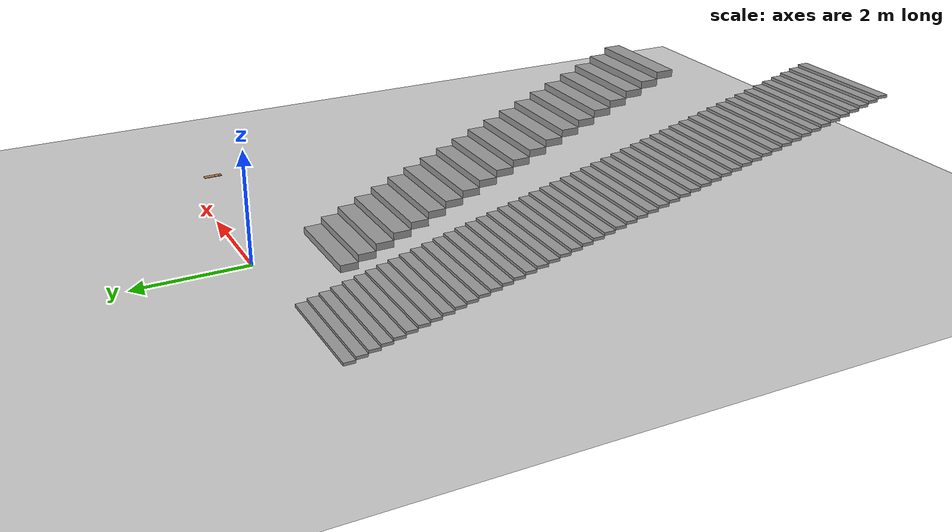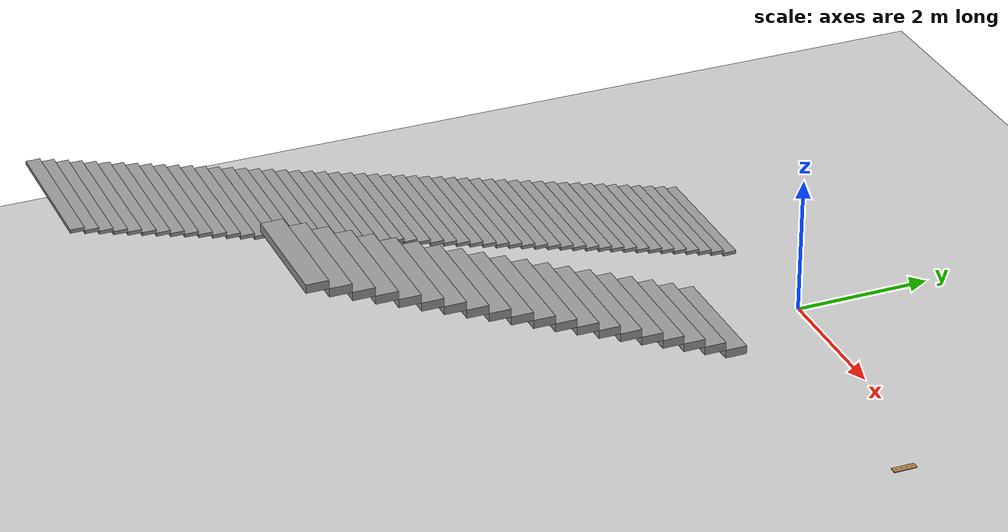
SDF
<sdf version="1.6">
 <world name="default">
  <model name="ground_plane">
   <static>1</static>
   <link name="link">
    <collision name="collision">
     <geometry><plane><normal>0 0 1</normal><size>100 100</size></plane></geometry>
     <surface><friction><ode><mu>100</mu><mu2>50</mu2></ode></friction></surface>
    </collision>
    <visual name="visual">
     <cast_shadows>0</cast_shadows>
     <geometry><plane><normal>0 0 1</normal><size>100 100</size></plane></geometry>
     <material>
      <script><uri>file://media/materials/scripts/gazebo.material</uri><name>Gazebo/Grey</name></script>
     </material>
    </visual>
   </link>
  </model>
  <model name="stair_short">
   <pose>-2.72 -4.97 0 0 -0 0</pose>
   <link name="Stairs_1">
    <visual name="Stairs_1_Visual_0">
     <pose>0 4.7383 0.025 0 -0 0</pose>
     <geometry><box><size>2.02 0.1934 0.05</size></box></geometry>
     <material>
      <script><uri>file://media/materials/scripts/gazebo.material</uri><name>Gazebo/Grey</name></script>
      <ambient>1 1 1 1</ambient>
     </material>
     <meta><layer>0</layer></meta>
    </visual>
    <collision name="Stairs_1_Collision_0">
     <geometry><box><size>2.02 0.1934 0.05</size></box></geometry>
     <pose>0 4.7383 0.025 0 -0 0</pose>
    </collision>
    <visual name="Stairs_1_Visual_1">
     <pose>0 4.5449 0.075 0 -0 0</pose>
     <geometry><box><size>2.02 0.1934 0.05</size></box></geometry>
     <material>
      <script><uri>file://media/materials/scripts/gazebo.material</uri><name>Gazebo/Grey</name></script>
      <ambient>1 1 1 1</ambient>
     </material>
     <meta><layer>0</layer></meta>
    </visual>
    <collision name="Stairs_1_Collision_1">
     <geometry><box><size>2.02 0.1934 0.05</size></box></geometry>
     <pose>0 4.5449 0.075 0 -0 0</pose>
    </collision>
    <visual name="Stairs_1_Visual_2">
     <pose>0 4.3515 0.125 0 -0 0</pose>
     <geometry><box><size>2.02 0.1934 0.05</size></box></geometry>
     <material>
      <script><uri>file://media/materials/scripts/gazebo.material</uri><name>Gazebo/Grey</name></script>
      <ambient>1 1 1 1</ambient>
     </material>
     <meta><layer>0</layer></meta>
    </visual>
    <collision name="Stairs_1_Collision_2">
     <geometry><box><size>2.02 0.1934 0.05</size></box></geometry>
     <pose>0 4.3515 0.125 0 -0 0</pose>
    </collision>
    <visual name="Stairs_1_Visual_3">
     <pose>0 4.1581 0.175 0 -0 0</pose>
     <geometry><box><size>2.02 0.1934 0.05</size></box></geometry>
     <material>
      <script><uri>file://media/materials/scripts/gazebo.material</uri><name>Gazebo/Grey</name></script>
      <ambient>1 1 1 1</ambient>
     </material>
     <meta><layer>0</layer></meta>
    </visual>
    <collision name="Stairs_1_Collision_3">
     <geometry><box><size>2.02 0.1934 0.05</size></box></geometry>
     <pose>0 4.1581 0.175 0 -0 0</pose>
    </collision>
    <visual name="Stairs_1_Visual_4">
     <pose>0 3.9647 0.225 0 -0 0</pose>
     <geometry><box><size>2.02 0.1934 0.05</size></box></geometry>
     <material>
      <script><uri>file://media/materials/scripts/gazebo.material</uri><name>Gazebo/Grey</name></script>
      <ambient>1 1 1 1</ambient>
     </material>
     <meta><layer>0</layer></meta>
    </visual>
    <collision name="Stairs_1_Collision_4">
     <geometry><box><size>2.02 0.1934 0.05</size></box></geometry>
     <pose>0 3.9647 0.225 0 -0 0</pose>
    </collision>
    <visual name="Stairs_1_Visual_5">
     <pose>0 3.7713 0.275 0 -0 0</pose>
     <geometry><box><size>2.02 0.1934 0.05</size></box></geometry>
     <material>
      <script><uri>file://media/materials/scripts/gazebo.material</uri><name>Gazebo/Grey</name></script>
      <ambient>1 1 1 1</ambient>
     </material>
     <meta><layer>0</layer></meta>
    </visual>
    <collision name="Stairs_1_Collision_5">
     <geometry><box><size>2.02 0.1934 0.05</size></box></geometry>
     <pose>0 3.7713 0.275 0 -0 0</pose>
    </collision>
    <visual name="Stairs_1_Visual_6">
     <pose>0 3.5779 0.325 0 -0 0</pose>
     <geometry><box><size>2.02 0.1934 0.05</size></box></geometry>
     <material>
      <script><uri>file://media/materials/scripts/gazebo.material</uri><name>Gazebo/Grey</name></script>
      <ambient>1 1 1 1</ambient>
     </material>
     <meta><layer>0</layer></meta>
    </visual>
    <collision name="Stairs_1_Collision_6">
     <geometry><box><size>2.02 0.1934 0.05</size></box></geometry>
     <pose>0 3.5779 0.325 0 -0 0</pose>
    </collision>
    <visual name="Stairs_1_Visual_7">
     <pose>0 3.3845 0.375 0 -0 0</pose>
     <geometry><box><size>2.02 0.1934 0.05</size></box></geometry>
     <material>
      <script><uri>file://media/materials/scripts/gazebo.material</uri><name>Gazebo/Grey</name></script>
      <ambient>1 1 1 1</ambient>
     </material>
     <meta><layer>0</layer></meta>
    </visual>
    <collision name="Stairs_1_Collision_7">
     <geometry><box><size>2.02 0.1934 0.05</size></box></geometry>
     <pose>0 3.3845 0.375 0 -0 0</pose>
    </collision>
    <visual name="Stairs_1_Visual_8">
     <pose>0 3.1911 0.425 0 -0 0</pose>
     <geometry><box><size>2.02 0.1934 0.05</size></box></geometry>
     <material>
      <script><uri>file://media/materials/scripts/gazebo.material</uri><name>Gazebo/Grey</name></script>
      <ambient>1 1 1 1</ambient>
     </material>
     <meta><layer>0</layer></meta>
    </visual>
    <collision name="Stairs_1_Collision_8">
     <geometry><box><size>2.02 0.1934 0.05</size></box></geometry>
     <pose>0 3.1911 0.425 0 -0 0</pose>
    </collision>
    <visual name="Stairs_1_Visual_9">
     <pose>0 2.9977 0.475 0 -0 0</pose>
     <geometry><box><size>2.02 0.1934 0.05</size></box></geometry>
     <material>
      <script><uri>file://media/materials/scripts/gazebo.material</uri><name>Gazebo/Grey</name></script>
      <ambient>1 1 1 1</ambient>
     </material>
     <meta><layer>0</layer></meta>
    </visual>
    <collision name="Stairs_1_Collision_9">
     <geometry><box><size>2.02 0.1934 0.05</size></box></geometry>
     <pose>0 2.9977 0.475 0 -0 0</pose>
    </collision>
    <visual name="Stairs_1_Visual_10">
     <pose>0 2.8043 0.525 0 -0 0</pose>
     <geometry><box><size>2.02 0.1934 0.05</size></box></geometry>
     <material>
      <script><uri>file://media/materials/scripts/gazebo.material</uri><name>Gazebo/Grey</name></script>
      <ambient>1 1 1 1</ambient>
     </material>
     <meta><layer>0</layer></meta>
    </visual>
    <collision name="Stairs_1_Collision_10">
     <geometry><box><size>2.02 0.1934 0.05</size></box></geometry>
     <pose>0 2.8043 0.525 0 -0 0</pose>
    </collision>
    <visual name="Stairs_1_Visual_11">
     <pose>0 2.6109 0.575 0 -0 0</pose>
     <geometry><box><size>2.02 0.1934 0.05</size></box></geometry>
     <material>
      <script><uri>file://media/materials/scripts/gazebo.material</uri><name>Gazebo/Grey</name></script>
      <ambient>1 1 1 1</ambient>
     </material>
     <meta><layer>0</layer></meta>
    </visual>
    <collision name="Stairs_1_Collision_11">
     <geometry><box><size>2.02 0.1934 0.05</size></box></geometry>
     <pose>0 2.6109 0.575 0 -0 0</pose>
    </collision>
    <visual name="Stairs_1_Visual_12">
     <pose>0 2.4175 0.625 0 -0 0</pose>
     <geometry><box><size>2.02 0.1934 0.05</size></box></geometry>
     <material>
      <script><uri>file://media/materials/scripts/gazebo.material</uri><name>Gazebo/Grey</name></script>
      <ambient>1 1 1 1</ambient>
     </material>
     <meta><layer>0</layer></meta>
    </visual>
    <collision name="Stairs_1_Collision_12">
     <geometry><box><size>2.02 0.1934 0.05</size></box></geometry>
     <pose>0 2.4175 0.625 0 -0 0</pose>
    </collision>
    <visual name="Stairs_1_Visual_13">
     <pose>0 2.2241 0.675 0 -0 0</pose>
     <geometry><box><size>2.02 0.1934 0.05</size></box></geometry>
     <material>
      <script><uri>file://media/materials/scripts/gazebo.material</uri><name>Gazebo/Grey</name></script>
      <ambient>1 1 1 1</ambient>
     </material>
     <meta><layer>0</layer></meta>
    </visual>
    <collision name="Stairs_1_Collision_13">
     <geometry><box><size>2.02 0.1934 0.05</size></box></geometry>
     <pose>0 2.2241 0.675 0 -0 0</pose>
    </collision>
    <visual name="Stairs_1_Visual_14">
     <pose>0 2.0307 0.725 0 -0 0</pose>
     <geometry><box><size>2.02 0.1934 0.05</size></box></geometry>
     <material>
      <script><uri>file://media/materials/scripts/gazebo.material</uri><name>Gazebo/Grey</name></script>
      <ambient>1 1 1 1</ambient>
     </material>
     <meta><layer>0</layer></meta>
    </visual>
    <collision name="Stairs_1_Collision_14">
     <geometry><box><size>2.02 0.1934 0.05</size></box></geometry>
     <pose>0 2.0307 0.725 0 -0 0</pose>
    </collision>
    <visual name="Stairs_1_Visual_15">
     <pose>0 1.8373 0.775 0 -0 0</pose>
     <geometry><box><size>2.02 0.1934 0.05</size></box></geometry>
     <material>
      <script><uri>file://media/materials/scripts/gazebo.material</uri><name>Gazebo/Grey</name></script>
      <ambient>1 1 1 1</ambient>
     </material>
     <meta><layer>0</layer></meta>
    </visual>
    <collision name="Stairs_1_Collision_15">
     <geometry><box><size>2.02 0.1934 0.05</size></box></geometry>
     <pose>0 1.8373 0.775 0 -0 0</pose>
    </collision>
    <visual name="Stairs_1_Visual_16">
     <pose>0 1.6439 0.825 0 -0 0</pose>
     <geometry><box><size>2.02 0.1934 0.05</size></box></geometry>
     <material>
      <script><uri>file://media/materials/scripts/gazebo.material</uri><name>Gazebo/Grey</name></script>
      <ambient>1 1 1 1</ambient>
     </material>
     <meta><layer>0</layer></meta>
    </visual>
    <collision name="Stairs_1_Collision_16">
     <geometry><box><size>2.02 0.1934 0.05</size></box></geometry>
     <pose>0 1.6439 0.825 0 -0 0</pose>
    </collision>
    <visual name="Stairs_1_Visual_17">
     <pose>0 1.4505 0.875 0 -0 0</pose>
     <geometry><box><size>2.02 0.1934 0.05</size></box></geometry>
     <material>
      <script><uri>file://media/materials/scripts/gazebo.material</uri><name>Gazebo/Grey</name></script>
      <ambient>1 1 1 1</ambient>
     </material>
     <meta><layer>0</layer></meta>
    </visual>
    <collision name="Stairs_1_Collision_17">
     <geometry><box><size>2.02 0.1934 0.05</size></box></geometry>
     <pose>0 1.4505 0.875 0 -0 0</pose>
    </collision>
    <visual name="Stairs_1_Visual_18">
     <pose>0 1.2571 0.925 0 -0 0</pose>
     <geometry><box><size>2.02 0.1934 0.05</size></box></geometry>
     <material>
      <script><uri>file://media/materials/scripts/gazebo.material</uri><name>Gazebo/Grey</name></script>
      <ambient>1 1 1 1</ambient>
     </material>
     <meta><layer>0</layer></meta>
    </visual>
    <collision name="Stairs_1_Collision_18">
     <geometry><box><size>2.02 0.1934 0.05</size></box></geometry>
     <pose>0 1.2571 0.925 0 -0 0</pose>
    </collision>
    <visual name="Stairs_1_Visual_19">
     <pose>0 1.0637 0.975 0 -0 0</pose>
     <geometry><box><size>2.02 0.1934 0.05</size></box></geometry>
     <material>
      <script><uri>file://media/materials/scripts/gazebo.material</uri><name>Gazebo/Grey</name></script>
      <ambient>1 1 1 1</ambient>
     </material>
     <meta><layer>0</layer></meta>
    </visual>
    <collision name="Stairs_1_Collision_19">
     <geometry><box><size>2.02 0.1934 0.05</size></box></geometry>
     <pose>0 1.0637 0.975 0 -0 0</pose>
    </collision>
    <visual name="Stairs_1_Visual_20">
     <pose>0 0.870299 1.025 0 -0 0</pose>
     <geometry><box><size>2.02 0.1934 0.05</size></box></geometry>
     <material>
      <script><uri>file://media/materials/scripts/gazebo.material</uri><name>Gazebo/Grey</name></script>
      <ambient>1 1 1 1</ambient>
     </material>
     <meta><layer>0</layer></meta>
    </visual>
    <collision name="Stairs_1_Collision_20">
     <geometry><box><size>2.02 0.1934 0.05</size></box></geometry>
     <pose>0 0.870299 1.025 0 -0 0</pose>
    </collision>
    <visual name="Stairs_1_Visual_21">
     <pose>0 0.6769 1.075 0 -0 0</pose>
     <geometry><box><size>2.02 0.1934 0.05</size></box></geometry>
     <material>
      <script><uri>file://media/materials/scripts/gazebo.material</uri><name>Gazebo/Grey</name></script>
      <ambient>1 1 1 1</ambient>
     </material>
     <meta><layer>0</layer></meta>
    </visual>
    <collision name="Stairs_1_Collision_21">
     <geometry><box><size>2.02 0.1934 0.05</size></box></geometry>
     <pose>0 0.6769 1.075 0 -0 0</pose>
    </collision>
    <visual name="Stairs_1_Visual_22">
     <pose>0 0.4835 1.125 0 -0 0</pose>
     <geometry><box><size>2.02 0.1934 0.05</size></box></geometry>
     <material>
      <script><uri>file://media/materials/scripts/gazebo.material</uri><name>Gazebo/Grey</name></script>
      <ambient>1 1 1 1</ambient>
     </material>
     <meta><layer>0</layer></meta>
    </visual>
    <collision name="Stairs_1_Collision_22">
     <geometry><box><size>2.02 0.1934 0.05</size></box></geometry>
     <pose>0 0.4835 1.125 0 -0 0</pose>
    </collision>
    <visual name="Stairs_1_Visual_23">
     <pose>0 0.2901 1.175 0 -0 0</pose>
     <geometry><box><size>2.02 0.1934 0.05</size></box></geometry>
     <material>
      <script><uri>file://media/materials/scripts/gazebo.material</uri><name>Gazebo/Grey</name></script>
      <ambient>1 1 1 1</ambient>
     </material>
     <meta><layer>0</layer></meta>
    </visual>
    <collision name="Stairs_1_Collision_23">
     <geometry><box><size>2.02 0.1934 0.05</size></box></geometry>
     <pose>0 0.2901 1.175 0 -0 0</pose>
    </collision>
    <visual name="Stairs_1_Visual_24">
     <pose>0 0.0967 1.225 0 -0 0</pose>
     <geometry><box><size>2.02 0.1934 0.05</size></box></geometry>
     <material>
      <script><uri>file://media/materials/scripts/gazebo.material</uri><name>Gazebo/Grey</name></script>
      <ambient>1 1 1 1</ambient>
     </material>
     <meta><layer>0</layer></meta>
    </visual>
    <collision name="Stairs_1_Collision_24">
     <geometry><box><size>2.02 0.1934 0.05</size></box></geometry>
     <pose>0 0.0967 1.225 0 -0 0</pose>
    </collision>
    <visual name="Stairs_1_Visual_25">
     <pose>0 -0.096701 1.275 0 -0 0</pose>
     <geometry><box><size>2.02 0.1934 0.05</size></box></geometry>
     <material>
      <script><uri>file://media/materials/scripts/gazebo.material</uri><name>Gazebo/Grey</name></script>
      <ambient>1 1 1 1</ambient>
     </material>
     <meta><layer>0</layer></meta>
    </visual>
    <collision name="Stairs_1_Collision_25">
     <geometry><box><size>2.02 0.1934 0.05</size></box></geometry>
     <pose>0 -0.096701 1.275 0 -0 0</pose>
    </collision>
    <visual name="Stairs_1_Visual_26">
     <pose>0 -0.2901 1.325 0 -0 0</pose>
     <geometry><box><size>2.02 0.1934 0.05</size></box></geometry>
     <material>
      <script><uri>file://media/materials/scripts/gazebo.material</uri><name>Gazebo/Grey</name></script>
      <ambient>1 1 1 1</ambient>
     </material>
     <meta><layer>0</layer></meta>
    </visual>
    <collision name="Stairs_1_Collision_26">
     <geometry><box><size>2.02 0.1934 0.05</size></box></geometry>
     <pose>0 -0.2901 1.325 0 -0 0</pose>
    </collision>
    <visual name="Stairs_1_Visual_27">
     <pose>0 -0.4835 1.375 0 -0 0</pose>
     <geometry><box><size>2.02 0.1934 0.05</size></box></geometry>
     <material>
      <script><uri>file://media/materials/scripts/gazebo.material</uri><name>Gazebo/Grey</name></script>
      <ambient>1 1 1 1</ambient>
     </material>
     <meta><layer>0</layer></meta>
    </visual>
    <collision name="Stairs_1_Collision_27">
     <geometry><box><size>2.02 0.1934 0.05</size></box></geometry>
     <pose>0 -0.4835 1.375 0 -0 0</pose>
    </collision>
    <visual name="Stairs_1_Visual_28">
     <pose>0 -0.6769 1.425 0 -0 0</pose>
     <geometry><box><size>2.02 0.1934 0.05</size></box></geometry>
     <material>
      <script><uri>file://media/materials/scripts/gazebo.material</uri><name>Gazebo/Grey</name></script>
      <ambient>1 1 1 1</ambient>
     </material>
     <meta><layer>0</layer></meta>
    </visual>
    <collision name="Stairs_1_Collision_28">
     <geometry><box><size>2.02 0.1934 0.05</size></box></geometry>
     <pose>0 -0.6769 1.425 0 -0 0</pose>
    </collision>
    <visual name="Stairs_1_Visual_29">
     <pose>0 -0.8703 1.475 0 -0 0</pose>
     <geometry><box><size>2.02 0.1934 0.05</size></box></geometry>
     <material>
      <script><uri>file://media/materials/scripts/gazebo.material</uri><name>Gazebo/Grey</name></script>
      <ambient>1 1 1 1</ambient>
     </material>
     <meta><layer>0</layer></meta>
    </visual>
    <collision name="Stairs_1_Collision_29">
     <geometry><box><size>2.02 0.1934 0.05</size></box></geometry>
     <pose>0 -0.8703 1.475 0 -0 0</pose>
    </collision>
    <visual name="Stairs_1_Visual_30">
     <pose>0 -1.0637 1.525 0 -0 0</pose>
     <geometry><box><size>2.02 0.1934 0.05</size></box></geometry>
     <material>
      <script><uri>file://media/materials/scripts/gazebo.material</uri><name>Gazebo/Grey</name></script>
      <ambient>1 1 1 1</ambient>
     </material>
     <meta><layer>0</layer></meta>
    </visual>
    <collision name="Stairs_1_Collision_30">
     <geometry><box><size>2.02 0.1934 0.05</size></box></geometry>
     <pose>0 -1.0637 1.525 0 -0 0</pose>
    </collision>
    <visual name="Stairs_1_Visual_31">
     <pose>0 -1.2571 1.575 0 -0 0</pose>
     <geometry><box><size>2.02 0.1934 0.05</size></box></geometry>
     <material>
      <script><uri>file://media/materials/scripts/gazebo.material</uri><name>Gazebo/Grey</name></script>
      <ambient>1 1 1 1</ambient>
     </material>
     <meta><layer>0</layer></meta>
    </visual>
    <collision name="Stairs_1_Collision_31">
     <geometry><box><size>2.02 0.1934 0.05</size></box></geometry>
     <pose>0 -1.2571 1.575 0 -0 0</pose>
    </collision>
    <visual name="Stairs_1_Visual_32">
     <pose>0 -1.4505 1.625 0 -0 0</pose>
     <geometry><box><size>2.02 0.1934 0.05</size></box></geometry>
     <material>
      <script><uri>file://media/materials/scripts/gazebo.material</uri><name>Gazebo/Grey</name></script>
      <ambient>1 1 1 1</ambient>
     </material>
     <meta><layer>0</layer></meta>
    </visual>
    <collision name="Stairs_1_Collision_32">
     <geometry><box><size>2.02 0.1934 0.05</size></box></geometry>
     <pose>0 -1.4505 1.625 0 -0 0</pose>
    </collision>
    <visual name="Stairs_1_Visual_33">
     <pose>0 -1.6439 1.675 0 -0 0</pose>
     <geometry><box><size>2.02 0.1934 0.05</size></box></geometry>
     <material>
      <script><uri>file://media/materials/scripts/gazebo.material</uri><name>Gazebo/Grey</name></script>
      <ambient>1 1 1 1</ambient>
     </material>
     <meta><layer>0</layer></meta>
    </visual>
    <collision name="Stairs_1_Collision_33">
     <geometry><box><size>2.02 0.1934 0.05</size></box></geometry>
     <pose>0 -1.6439 1.675 0 -0 0</pose>
    </collision>
    <visual name="Stairs_1_Visual_34">
     <pose>0 -1.8373 1.725 0 -0 0</pose>
     <geometry><box><size>2.02 0.1934 0.05</size></box></geometry>
     <material>
      <script><uri>file://media/materials/scripts/gazebo.material</uri><name>Gazebo/Grey</name></script>
      <ambient>1 1 1 1</ambient>
     </material>
     <meta><layer>0</layer></meta>
    </visual>
    <collision name="Stairs_1_Collision_34">
     <geometry><box><size>2.02 0.1934 0.05</size></box></geometry>
     <pose>0 -1.8373 1.725 0 -0 0</pose>
    </collision>
    <visual name="Stairs_1_Visual_35">
     <pose>0 -2.0307 1.775 0 -0 0</pose>
     <geometry><box><size>2.02 0.1934 0.05</size></box></geometry>
     <material>
      <script><uri>file://media/materials/scripts/gazebo.material</uri><name>Gazebo/Grey</name></script>
      <ambient>1 1 1 1</ambient>
     </material>
     <meta><layer>0</layer></meta>
    </visual>
    <collision name="Stairs_1_Collision_35">
     <geometry><box><size>2.02 0.1934 0.05</size></box></geometry>
     <pose>0 -2.0307 1.775 0 -0 0</pose>
    </collision>
    <visual name="Stairs_1_Visual_36">
     <pose>0 -2.2241 1.825 0 -0 0</pose>
     <geometry><box><size>2.02 0.1934 0.05</size></box></geometry>
     <material>
      <script><uri>file://media/materials/scripts/gazebo.material</uri><name>Gazebo/Grey</name></script>
      <ambient>1 1 1 1</ambient>
     </material>
     <meta><layer>0</layer></meta>
    </visual>
    <collision name="Stairs_1_Collision_36">
     <geometry><box><size>2.02 0.1934 0.05</size></box></geometry>
     <pose>0 -2.2241 1.825 0 -0 0</pose>
    </collision>
    <visual name="Stairs_1_Visual_37">
     <pose>0 -2.4175 1.875 0 -0 0</pose>
     <geometry><box><size>2.02 0.1934 0.05</size></box></geometry>
     <material>
      <script><uri>file://media/materials/scripts/gazebo.material</uri><name>Gazebo/Grey</name></script>
      <ambient>1 1 1 1</ambient>
     </material>
     <meta><layer>0</layer></meta>
    </visual>
    <collision name="Stairs_1_Collision_37">
     <geometry><box><size>2.02 0.1934 0.05</size></box></geometry>
     <pose>0 -2.4175 1.875 0 -0 0</pose>
    </collision>
    <visual name="Stairs_1_Visual_38">
     <pose>0 -2.6109 1.925 0 -0 0</pose>
     <geometry><box><size>2.02 0.1934 0.05</size></box></geometry>
     <material>
      <script><uri>file://media/materials/scripts/gazebo.material</uri><name>Gazebo/Grey</name></script>
      <ambient>1 1 1 1</ambient>
     </material>
     <meta><layer>0</layer></meta>
    </visual>
    <collision name="Stairs_1_Collision_38">
     <geometry><box><size>2.02 0.1934 0.05</size></box></geometry>
     <pose>0 -2.6109 1.925 0 -0 0</pose>
    </collision>
    <visual name="Stairs_1_Visual_39">
     <pose>0 -2.8043 1.975 0 -0 0</pose>
     <geometry><box><size>2.02 0.1934 0.05</size></box></geometry>
     <material>
      <script><uri>file://media/materials/scripts/gazebo.material</uri><name>Gazebo/Grey</name></script>
      <ambient>1 1 1 1</ambient>
     </material>
     <meta><layer>0</layer></meta>
    </visual>
    <collision name="Stairs_1_Collision_39">
     <geometry><box><size>2.02 0.1934 0.05</size></box></geometry>
     <pose>0 -2.8043 1.975 0 -0 0</pose>
    </collision>
    <visual name="Stairs_1_Visual_40">
     <pose>0 -2.9977 2.025 0 -0 0</pose>
     <geometry><box><size>2.02 0.1934 0.05</size></box></geometry>
     <material>
      <script><uri>file://media/materials/scripts/gazebo.material</uri><name>Gazebo/Grey</name></script>
      <ambient>1 1 1 1</ambient>
     </material>
     <meta><layer>0</layer></meta>
    </visual>
    <collision name="Stairs_1_Collision_40">
     <geometry><box><size>2.02 0.1934 0.05</size></box></geometry>
     <pose>0 -2.9977 2.025 0 -0 0</pose>
    </collision>
    <visual name="Stairs_1_Visual_41">
     <pose>0 -3.1911 2.075 0 -0 0</pose>
     <geometry><box><size>2.02 0.1934 0.05</size></box></geometry>
     <material>
      <script><uri>file://media/materials/scripts/gazebo.material</uri><name>Gazebo/Grey</name></script>
      <ambient>1 1 1 1</ambient>
     </material>
     <meta><layer>0</layer></meta>
    </visual>
    <collision name="Stairs_1_Collision_41">
     <geometry><box><size>2.02 0.1934 0.05</size></box></geometry>
     <pose>0 -3.1911 2.075 0 -0 0</pose>
    </collision>
    <visual name="Stairs_1_Visual_42">
     <pose>0 -3.3845 2.125 0 -0 0</pose>
     <geometry><box><size>2.02 0.1934 0.05</size></box></geometry>
     <material>
      <script><uri>file://media/materials/scripts/gazebo.material</uri><name>Gazebo/Grey</name></script>
      <ambient>1 1 1 1</ambient>
     </material>
     <meta><layer>0</layer></meta>
    </visual>
    <collision name="Stairs_1_Collision_42">
     <geometry><box><size>2.02 0.1934 0.05</size></box></geometry>
     <pose>0 -3.3845 2.125 0 -0 0</pose>
    </collision>
    <visual name="Stairs_1_Visual_43">
     <pose>0 -3.5779 2.175 0 -0 0</pose>
     <geometry><box><size>2.02 0.1934 0.05</size></box></geometry>
     <material>
      <script><uri>file://media/materials/scripts/gazebo.material</uri><name>Gazebo/Grey</name></script>
      <ambient>1 1 1 1</ambient>
     </material>
     <meta><layer>0</layer></meta>
    </visual>
    <collision name="Stairs_1_Collision_43">
     <geometry><box><size>2.02 0.1934 0.05</size></box></geometry>
     <pose>0 -3.5779 2.175 0 -0 0</pose>
    </collision>
    <visual name="Stairs_1_Visual_44">
     <pose>0 -3.7713 2.225 0 -0 0</pose>
     <geometry><box><size>2.02 0.1934 0.05</size></box></geometry>
     <material>
      <script><uri>file://media/materials/scripts/gazebo.material</uri><name>Gazebo/Grey</name></script>
      <ambient>1 1 1 1</ambient>
     </material>
     <meta><layer>0</layer></meta>
    </visual>
    <collision name="Stairs_1_Collision_44">
     <geometry><box><size>2.02 0.1934 0.05</size></box></geometry>
     <pose>0 -3.7713 2.225 0 -0 0</pose>
    </collision>
    <visual name="Stairs_1_Visual_45">
     <pose>0 -3.9647 2.275 0 -0 0</pose>
     <geometry><box><size>2.02 0.1934 0.05</size></box></geometry>
     <material>
      <script><uri>file://media/materials/scripts/gazebo.material</uri><name>Gazebo/Grey</name></script>
      <ambient>1 1 1 1</ambient>
     </material>
     <meta><layer>0</layer></meta>
    </visual>
    <collision name="Stairs_1_Collision_45">
     <geometry><box><size>2.02 0.1934 0.05</size></box></geometry>
     <pose>0 -3.9647 2.275 0 -0 0</pose>
    </collision>
    <visual name="Stairs_1_Visual_46">
     <pose>0 -4.1581 2.325 0 -0 0</pose>
     <geometry><box><size>2.02 0.1934 0.05</size></box></geometry>
     <material>
      <script><uri>file://media/materials/scripts/gazebo.material</uri><name>Gazebo/Grey</name></script>
      <ambient>1 1 1 1</ambient>
     </material>
     <meta><layer>0</layer></meta>
    </visual>
    <collision name="Stairs_1_Collision_46">
     <geometry><box><size>2.02 0.1934 0.05</size></box></geometry>
     <pose>0 -4.1581 2.325 0 -0 0</pose>
    </collision>
    <visual name="Stairs_1_Visual_47">
     <pose>0 -4.3515 2.375 0 -0 0</pose>
     <geometry><box><size>2.02 0.1934 0.05</size></box></geometry>
     <material>
      <script><uri>file://media/materials/scripts/gazebo.material</uri><name>Gazebo/Grey</name></script>
      <ambient>1 1 1 1</ambient>
     </material>
     <meta><layer>0</layer></meta>
    </visual>
    <collision name="Stairs_1_Collision_47">
     <geometry><box><size>2.02 0.1934 0.05</size></box></geometry>
     <pose>0 -4.3515 2.375 0 -0 0</pose>
    </collision>
    <visual name="Stairs_1_Visual_48">
     <pose>0 -4.5449 2.425 0 -0 0</pose>
     <geometry><box><size>2.02 0.1934 0.05</size></box></geometry>
     <material>
      <script><uri>file://media/materials/scripts/gazebo.material</uri><name>Gazebo/Grey</name></script>
      <ambient>1 1 1 1</ambient>
     </material>
     <meta><layer>0</layer></meta>
    </visual>
    <collision name="Stairs_1_Collision_48">
     <geometry><box><size>2.02 0.1934 0.05</size></box></geometry>
     <pose>0 -4.5449 2.425 0 -0 0</pose>
    </collision>
    <visual name="Stairs_1_Visual_49">
     <pose>0 -4.7383 2.475 0 -0 0</pose>
     <geometry><box><size>2.02 0.1934 0.05</size></box></geometry>
     <material>
      <script><uri>file://media/materials/scripts/gazebo.material</uri><name>Gazebo/Grey</name></script>
      <ambient>1 1 1 1</ambient>
     </material>
     <meta><layer>0</layer></meta>
    </visual>
    <collision name="Stairs_1_Collision_49">
     <geometry><box><size>2.02 0.1934 0.05</size></box></geometry>
     <pose>0 -4.7383 2.475 0 -0 0</pose>
    </collision>
   </link>
   <static>1</static>
  </model>
  <model name="stair2">
   <pose>-0.07 -4.32 0 0 -0 0</pose>
   <link name="Stairs_1">
    <visual name="Stairs_1_Visual_0">
     <pose>-0 2.98775 0.0625 0 -0 0</pose>
     <geometry><box><size>1.72 0.3145 0.125</size></box></geometry>
     <material>
      <script><uri>file://media/materials/scripts/gazebo.material</uri><name>Gazebo/Grey</name></script>
      <ambient>1 1 1 1</ambient>
     </material>
     <meta><layer>0</layer></meta>
    </visual>
    <collision name="Stairs_1_Collision_0">
     <geometry><box><size>1.72 0.3145 0.125</size></box></geometry>
     <pose>-0 2.98775 0.0625 0 -0 0</pose>
    </collision>
    <visual name="Stairs_1_Visual_1">
     <pose>-0 2.67325 0.1875 0 -0 0</pose>
     <geometry><box><size>1.72 0.3145 0.125</size></box></geometry>
     <material>
      <script><uri>file://media/materials/scripts/gazebo.material</uri><name>Gazebo/Grey</name></script>
      <ambient>1 1 1 1</ambient>
     </material>
     <meta><layer>0</layer></meta>
    </visual>
    <collision name="Stairs_1_Collision_1">
     <geometry><box><size>1.72 0.3145 0.125</size></box></geometry>
     <pose>-0 2.67325 0.1875 0 -0 0</pose>
    </collision>
    <visual name="Stairs_1_Visual_2">
     <pose>-0 2.35875 0.3125 0 -0 0</pose>
     <geometry><box><size>1.72 0.3145 0.125</size></box></geometry>
     <material>
      <script><uri>file://media/materials/scripts/gazebo.material</uri><name>Gazebo/Grey</name></script>
      <ambient>1 1 1 1</ambient>
     </material>
     <meta><layer>0</layer></meta>
    </visual>
    <collision name="Stairs_1_Collision_2">
     <geometry><box><size>1.72 0.3145 0.125</size></box></geometry>
     <pose>-0 2.35875 0.3125 0 -0 0</pose>
    </collision>
    <visual name="Stairs_1_Visual_3">
     <pose>-0 2.04425 0.4375 0 -0 0</pose>
     <geometry><box><size>1.72 0.3145 0.125</size></box></geometry>
     <material>
      <script><uri>file://media/materials/scripts/gazebo.material</uri><name>Gazebo/Grey</name></script>
      <ambient>1 1 1 1</ambient>
     </material>
     <meta><layer>0</layer></meta>
    </visual>
    <collision name="Stairs_1_Collision_3">
     <geometry><box><size>1.72 0.3145 0.125</size></box></geometry>
     <pose>-0 2.04425 0.4375 0 -0 0</pose>
    </collision>
    <visual name="Stairs_1_Visual_4">
     <pose>-0 1.72975 0.5625 0 -0 0</pose>
     <geometry><box><size>1.72 0.3145 0.125</size></box></geometry>
     <material>
      <script><uri>file://media/materials/scripts/gazebo.material</uri><name>Gazebo/Grey</name></script>
      <ambient>1 1 1 1</ambient>
     </material>
     <meta><layer>0</layer></meta>
    </visual>
    <collision name="Stairs_1_Collision_4">
     <geometry><box><size>1.72 0.3145 0.125</size></box></geometry>
     <pose>-0 1.72975 0.5625 0 -0 0</pose>
    </collision>
    <visual name="Stairs_1_Visual_5">
     <pose>-0 1.41525 0.6875 0 -0 0</pose>
     <geometry><box><size>1.72 0.3145 0.125</size></box></geometry>
     <material>
      <script><uri>file://media/materials/scripts/gazebo.material</uri><name>Gazebo/Grey</name></script>
      <ambient>1 1 1 1</ambient>
     </material>
     <meta><layer>0</layer></meta>
    </visual>
    <collision name="Stairs_1_Collision_5">
     <geometry><box><size>1.72 0.3145 0.125</size></box></geometry>
     <pose>-0 1.41525 0.6875 0 -0 0</pose>
    </collision>
    <visual name="Stairs_1_Visual_6">
     <pose>-0 1.10075 0.8125 0 -0 0</pose>
     <geometry><box><size>1.72 0.3145 0.125</size></box></geometry>
     <material>
      <script><uri>file://media/materials/scripts/gazebo.material</uri><name>Gazebo/Grey</name></script>
      <ambient>1 1 1 1</ambient>
     </material>
     <meta><layer>0</layer></meta>
    </visual>
    <collision name="Stairs_1_Collision_6">
     <geometry><box><size>1.72 0.3145 0.125</size></box></geometry>
     <pose>-0 1.10075 0.8125 0 -0 0</pose>
    </collision>
    <visual name="Stairs_1_Visual_7">
     <pose>-0 0.78625 0.9375 0 -0 0</pose>
     <geometry><box><size>1.72 0.3145 0.125</size></box></geometry>
     <material>
      <script><uri>file://media/materials/scripts/gazebo.material</uri><name>Gazebo/Grey</name></script>
      <ambient>1 1 1 1</ambient>
     </material>
     <meta><layer>0</layer></meta>
    </visual>
    <collision name="Stairs_1_Collision_7">
     <geometry><box><size>1.72 0.3145 0.125</size></box></geometry>
     <pose>-0 0.78625 0.9375 0 -0 0</pose>
    </collision>
    <visual name="Stairs_1_Visual_8">
     <pose>-0 0.47175 1.0625 0 -0 0</pose>
     <geometry><box><size>1.72 0.3145 0.125</size></box></geometry>
     <material>
      <script><uri>file://media/materials/scripts/gazebo.material</uri><name>Gazebo/Grey</name></script>
      <ambient>1 1 1 1</ambient>
     </material>
     <meta><layer>0</layer></meta>
    </visual>
    <collision name="Stairs_1_Collision_8">
     <geometry><box><size>1.72 0.3145 0.125</size></box></geometry>
     <pose>-0 0.47175 1.0625 0 -0 0</pose>
    </collision>
    <visual name="Stairs_1_Visual_9">
     <pose>-0 0.15725 1.1875 0 -0 0</pose>
     <geometry><box><size>1.72 0.3145 0.125</size></box></geometry>
     <material>
      <script><uri>file://media/materials/scripts/gazebo.material</uri><name>Gazebo/Grey</name></script>
      <ambient>1 1 1 1</ambient>
     </material>
     <meta><layer>0</layer></meta>
    </visual>
    <collision name="Stairs_1_Collision_9">
     <geometry><box><size>1.72 0.3145 0.125</size></box></geometry>
     <pose>-0 0.15725 1.1875 0 -0 0</pose>
    </collision>
    <visual name="Stairs_1_Visual_10">
     <pose>-0 -0.15725 1.3125 0 -0 0</pose>
     <geometry><box><size>1.72 0.3145 0.125</size></box></geometry>
     <material>
      <script><uri>file://media/materials/scripts/gazebo.material</uri><name>Gazebo/Grey</name></script>
      <ambient>1 1 1 1</ambient>
     </material>
     <meta><layer>0</layer></meta>
    </visual>
    <collision name="Stairs_1_Collision_10">
     <geometry><box><size>1.72 0.3145 0.125</size></box></geometry>
     <pose>-0 -0.15725 1.3125 0 -0 0</pose>
    </collision>
    <visual name="Stairs_1_Visual_11">
     <pose>-0 -0.47175 1.4375 0 -0 0</pose>
     <geometry><box><size>1.72 0.3145 0.125</size></box></geometry>
     <material>
      <script><uri>file://media/materials/scripts/gazebo.material</uri><name>Gazebo/Grey</name></script>
      <ambient>1 1 1 1</ambient>
     </material>
     <meta><layer>0</layer></meta>
    </visual>
    <collision name="Stairs_1_Collision_11">
     <geometry><box><size>1.72 0.3145 0.125</size></box></geometry>
     <pose>-0 -0.47175 1.4375 0 -0 0</pose>
    </collision>
    <visual name="Stairs_1_Visual_12">
     <pose>-0 -0.78625 1.5625 0 -0 0</pose>
     <geometry><box><size>1.72 0.3145 0.125</size></box></geometry>
     <material>
      <script><uri>file://media/materials/scripts/gazebo.material</uri><name>Gazebo/Grey</name></script>
      <ambient>1 1 1 1</ambient>
     </material>
     <meta><layer>0</layer></meta>
    </visual>
    <collision name="Stairs_1_Collision_12">
     <geometry><box><size>1.72 0.3145 0.125</size></box></geometry>
     <pose>-0 -0.78625 1.5625 0 -0 0</pose>
    </collision>
    <visual name="Stairs_1_Visual_13">
     <pose>-0 -1.10075 1.6875 0 -0 0</pose>
     <geometry><box><size>1.72 0.3145 0.125</size></box></geometry>
     <material>
      <script><uri>file://media/materials/scripts/gazebo.material</uri><name>Gazebo/Grey</name></script>
      <ambient>1 1 1 1</ambient>
     </material>
     <meta><layer>0</layer></meta>
    </visual>
    <collision name="Stairs_1_Collision_13">
     <geometry><box><size>1.72 0.3145 0.125</size></box></geometry>
     <pose>-0 -1.10075 1.6875 0 -0 0</pose>
    </collision>
    <visual name="Stairs_1_Visual_14">
     <pose>-0 -1.41525 1.8125 0 -0 0</pose>
     <geometry><box><size>1.72 0.3145 0.125</size></box></geometry>
     <material>
      <script><uri>file://media/materials/scripts/gazebo.material</uri><name>Gazebo/Grey</name></script>
      <ambient>1 1 1 1</ambient>
     </material>
     <meta><layer>0</layer></meta>
    </visual>
    <collision name="Stairs_1_Collision_14">
     <geometry><box><size>1.72 0.3145 0.125</size></box></geometry>
     <pose>-0 -1.41525 1.8125 0 -0 0</pose>
    </collision>
    <visual name="Stairs_1_Visual_15">
     <pose>-0 -1.72975 1.9375 0 -0 0</pose>
     <geometry><box><size>1.72 0.3145 0.125</size></box></geometry>
     <material>
      <script><uri>file://media/materials/scripts/gazebo.material</uri><name>Gazebo/Grey</name></script>
      <ambient>1 1 1 1</ambient>
     </material>
     <meta><layer>0</layer></meta>
    </visual>
    <collision name="Stairs_1_Collision_15">
     <geometry><box><size>1.72 0.3145 0.125</size></box></geometry>
     <pose>-0 -1.72975 1.9375 0 -0 0</pose>
    </collision>
    <visual name="Stairs_1_Visual_16">
     <pose>-0 -2.04425 2.0625 0 -0 0</pose>
     <geometry><box><size>1.72 0.3145 0.125</size></box></geometry>
     <material>
      <script><uri>file://media/materials/scripts/gazebo.material</uri><name>Gazebo/Grey</name></script>
      <ambient>1 1 1 1</ambient>
     </material>
     <meta><layer>0</layer></meta>
    </visual>
    <collision name="Stairs_1_Collision_16">
     <geometry><box><size>1.72 0.3145 0.125</size></box></geometry>
     <pose>-0 -2.04425 2.0625 0 -0 0</pose>
    </collision>
    <visual name="Stairs_1_Visual_17">
     <pose>-0 -2.35875 2.1875 0 -0 0</pose>
     <geometry><box><size>1.72 0.3145 0.125</size></box></geometry>
     <material>
      <script><uri>file://media/materials/scripts/gazebo.material</uri><name>Gazebo/Grey</name></script>
      <ambient>1 1 1 1</ambient>
     </material>
     <meta><layer>0</layer></meta>
    </visual>
    <collision name="Stairs_1_Collision_17">
     <geometry><box><size>1.72 0.3145 0.125</size></box></geometry>
     <pose>-0 -2.35875 2.1875 0 -0 0</pose>
    </collision>
    <visual name="Stairs_1_Visual_18">
     <pose>-0 -2.67325 2.3125 0 -0 0</pose>
     <geometry><box><size>1.72 0.3145 0.125</size></box></geometry>
     <material>
      <script><uri>file://media/materials/scripts/gazebo.material</uri><name>Gazebo/Grey</name></script>
      <ambient>1 1 1 1</ambient>
     </material>
     <meta><layer>0</layer></meta>
    </visual>
    <collision name="Stairs_1_Collision_18">
     <geometry><box><size>1.72 0.3145 0.125</size></box></geometry>
     <pose>-0 -2.67325 2.3125 0 -0 0</pose>
    </collision>
    <visual name="Stairs_1_Visual_19">
     <pose>-0 -2.98775 2.4375 0 -0 0</pose>
     <geometry><box><size>1.72 0.3145 0.125</size></box></geometry>
     <material>
      <script><uri>file://media/materials/scripts/gazebo.material</uri><name>Gazebo/Grey</name></script>
      <ambient>1 1 1 1</ambient>
     </material>
     <meta><layer>0</layer></meta>
    </visual>
    <collision name="Stairs_1_Collision_19">
     <geometry><box><size>1.72 0.3145 0.125</size></box></geometry>
     <pose>-0 -2.98775 2.4375 0 -0 0</pose>
    </collision>
   </link>
   <static>1</static>
  </model>
  <model name="wooden_board_0_clone_13">
   <link name="base">
    <pose>0 0 0.00523 0 -0 0</pose>
    <inertial>
     <mass>0.2765</mass>
     <inertia>
      <ixx>0.0025148</ixx>
      <ixy>0</ixy>
      <ixz>0</ixz>
      <iyy>0.00024037</iyy>
      <iyz>0</iyz>
      <izz>0.00275013</izz>
     </inertia>
    </inertial>
    <collision name="collision">
     <geometry><box><size>0.1016 0.3302 0.01046</size></box></geometry>
     <surface>
      <contact>
       <poissons_ratio>0.347</poissons_ratio>
       <elastic_modulus>8.8e+09</elastic_modulus>
       <ode><kp>100000</kp><kd>100</kd><max_vel>100</max_vel><min_depth>0.001</min_depth></ode>
      </contact>
      <friction>
       <torsional>
        <coefficient>1</coefficient>
        <use_patch_radius>0</use_patch_radius>
        <surface_radius>0.01</surface_radius>
       </torsional>
      </friction>
     </surface>
    </collision>
    <visual name="visual">
     <geometry><box><size>0.1016 0.3302 0.01046</size></box></geometry>
     <material>
      <script><uri>file://media/materials/scripts/gazebo.material</uri><name>Gazebo/Wood</name></script>
     </material>
    </visual>
    <visual name="tee_nut_1">
     <pose>0 -0.116 0 0 -0 0</pose>
     <geometry><cylinder><radius>0.00635</radius><length>0.0105646</length></cylinder></geometry>
     <material>
      <script><uri>file://media/materials/scripts/gazebo.material</uri><name>Gazebo/Grey</name></script>
     </material>
    </visual>
    <visual name="tee_nut_2">
     <pose>0 -0.038 0 0 -0 0</pose>
     <geometry><cylinder><radius>0.00635</radius><length>0.0105646</length></cylinder></geometry>
     <material>
      <script><uri>file://media/materials/scripts/gazebo.material</uri><name>Gazebo/Grey</name></script>
     </material>
    </visual>
    <visual name="tee_nut_3">
     <pose>0 0.038 0 0 -0 0</pose>
     <geometry><cylinder><radius>0.00635</radius><length>0.0105646</length></cylinder></geometry>
     <material>
      <script><uri>file://media/materials/scripts/gazebo.material</uri><name>Gazebo/Grey</name></script>
     </material>
    </visual>
    <visual name="tee_nut_4">
     <pose>0 0.116 0 0 -0 0</pose>
     <geometry><cylinder><radius>0.00635</radius><length>0.0105646</length></cylinder></geometry>
     <material>
      <script><uri>file://media/materials/scripts/gazebo.material</uri><name>Gazebo/Grey</name></script>
     </material>
    </visual>
   </link>
   <pose>4.12596 -0.530978 -0.001007 0 -0 0</pose>
  </model>
 </world>
</sdf>
